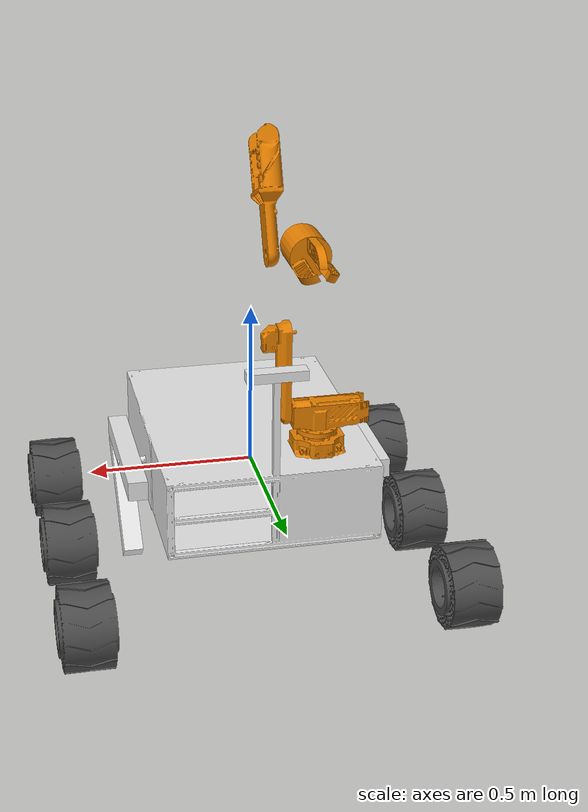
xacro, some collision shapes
<?xml version="1.0"?>
<robot xmlns:xacro="http://www.ros.org/wiki/xacro" name="full_rover">
    <!-- INCLUDE THE ARM URDF -->
    <xacro:include filename="$(find rover_arm_description)/urdf/rover_arm.urdf.xacro" />
    <xacro:include filename="$(find rover_body_description)/urdf/rover_body.urdf.xacro" />

    <xacro:property name="body_pos" value="0 0 0" />
    <xacro:property name="arm_pos" value="-0.16 0.2 0.15" />

    <link name="base_link"/>

    <xacro:rover_body parent="base_link" prefix="body_">
        <origin xyz="${body_pos}" rpy="0 0 0"/>
    </xacro:rover_body>

    <xacro:rover_arm parent="body_frame" prefix="arm_">
        <origin xyz="${arm_pos}" rpy="0 0 0"/>
    </xacro:rover_arm>

</robot>

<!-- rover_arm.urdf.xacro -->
<robot xmlns:xacro="http://www.ros.org/wiki/xacro" name="rover_arm">

  <xacro:macro name="rover_arm" params="parent prefix *origin">

  <!-- LINK OFFSETS -->
  <xacro:property name="base_rotation_offset" value="${pi / 2} 0 0" />
  <xacro:property name="j1_rotation_offset" value="${pi / 2} 0 0" />
  <xacro:property name="j2_rotation_offset" value="${pi / 6} 0 0" />
  <xacro:property name="j3_rotation_offset" value="${pi - 0.4366117} 0 0" />

  <!-- JOINT POSITIONS -->
  <xacro:property name="j1_joint_pos" value="0 0 0.024" />
  <xacro:property name="j2_joint_pos" value="0.0808 0 0.071" />
  <xacro:property name="j3_joint_pos" value="0.007 0 0.25" />
  <xacro:property name="ee_base_joint_pos" value="-0.028 0 0.2715" />
  <xacro:property name="slider_joint_pos" value="0 0.11 0" />
  <xacro:property name="finger1_joint_pos" value="-0.052384 0.134522 -0.016965" />
  <xacro:property name="finger1_joint_rotation" value="0 ${-pi / 6} 0" />
  <xacro:property name="finger2_joint_pos" value="0.011500 0.134522 0.053848" />
  <xacro:property name="finger2_joint_rotation" value="0 ${pi / 2} 0" />
  <xacro:property name="finger3_joint_pos" value="0.040884 0.134522 -0.036883" />
  <xacro:property name="finger3_joint_rotation" value="0 ${pi * 7 / 6} 0" />

  <!-- COLORS -->
  <!-- links color -->
  <material name="${prefix}links_color">
    <color rgba="0.9 0.5 0.0 1.0"/>
  </material>

  <!-- SLIDER TO FINGER CINEMATIC RELATION -->
  <xacro:property name="slider_length" value="0.05" />
  <xacro:property name="finger_rotation_upper_bound" value="${pi / 2}" />
  <!-- the formula used to calculate the multiplier is given by the total rotation distance divided by the total sliding distance -->
  <xacro:property name="relation_multip" value="${finger_rotation_upper_bound / slider_length}" />

  <!-- BASE LINK -->
  <link name="${prefix}base">
    <visual>
      <origin xyz="0 0 0" rpy="${base_rotation_offset}"/>
      <geometry>
        <mesh filename="package://rover_arm_description/meshes/visual/base.stl" scale="0.001 0.001 0.001"/>
      </geometry>
      <material name="${prefix}links_color"/>
    </visual>
    <collision>
      <origin xyz="0 0.015 -0.022" rpy="0 0 0"/>
      <geometry>
        <box size="0.153000 0.202000 0.122040"/>
      </geometry>
    </collision>
  </link>

  <link name="${prefix}j1">
    <visual>
      <origin xyz="0 0 0" rpy="${j1_rotation_offset}"/>
      <geometry>
        <mesh filename="package://rover_arm_description/meshes/visual/j1.stl" scale="0.001 0.001 0.001"/>
      </geometry>
      <material name="${prefix}links_color"/>
    </visual>
    <collision>
      <origin xyz="-0.035 0 0.065" rpy="0 0 0"/>
      <geometry>
        <box size="0.23 0.07 0.08"/>
      </geometry>
    </collision>
  </link>

  <link name="${prefix}j2">
    <visual>
      <origin xyz="0 0 0" rpy="${j2_rotation_offset}"/>
      <geometry>
        <mesh filename="package://rover_arm_description/meshes/visual/j2.stl" scale="0.001 0.001 0.001"/>
      </geometry>
      <material name="${prefix}links_color"/>
    </visual>
    <collision>
      <origin xyz="${0.05 / 2} 0 ${0.25 / 2}" rpy="0 0 0"/>
      <geometry>
        <box size="0.05 0.05 0.32"/>
      </geometry>
    </collision>
    <collision>
      <origin xyz="${0.05 + 0.05 / 2} 0 0.185" rpy="0 0 0"/>
      <geometry>
        <box size="0.05 0.05 0.17"/>
      </geometry>
    </collision>
  </link>

  <link name="${prefix}j3">
    <visual>
      <origin xyz="0 0 0" rpy="${j3_rotation_offset}"/>
      <geometry>
        <mesh filename="package://rover_arm_description/meshes/visual/j3.stl" scale="0.001 0.001 0.001"/>
      </geometry>
      <material name="${prefix}links_color"/>
    </visual>
    <collision>
      <origin xyz="${-0.05 / 2} 0 0.04" rpy="0 0 0"/>
      <geometry>
        <box size="0.05 0.07 0.15"/>
      </geometry>
    </collision>
    <collision>
      <origin xyz="${-0.05 / 2} 0 0.2" rpy="0 0 0"/>
      <geometry>
        <box size="0.13 0.07 0.2"/>
      </geometry>
    </collision>
    <collision>
      <origin xyz="${-(0.05 + 0.13 + 0.04) / 2} 0 0.195" rpy="0 0 0"/>
      <geometry>
        <box size="0.04 0.07 0.13"/>
      </geometry>
    </collision>
  </link>

  <!-- END EFFECTOR BASE -->
  <link name="${prefix}ee_base">
    <visual>
      <origin xyz="0 0.018007 0" rpy="0 0 0"/>
      <geometry>
        <mesh filename="package://rover_arm_description/meshes/visual/end_effector_base.stl" scale="0.001 0.001 0.001"/>
      </geometry>
      <material name="${prefix}links_color"/>
    </visual>
    <collision>
      <origin xyz="0 0.07 0" rpy="${pi / 2} 0 0"/>
      <geometry>
        <cylinder radius="0.06" length="0.12"/>
      </geometry>
    </collision>
  </link>

  <!-- END EFFECTOR SLIDER -->
  <link name="${prefix}ee_slider">
    <visual>
      <origin xyz="0 0 0" rpy="0 0 0"/>
      <geometry>
        <mesh filename="package://rover_arm_description/meshes/visual/end_effector_slider.stl" scale="0.001 0.001 0.001"/>
      </geometry>
      <material name="${prefix}links_color"/>
    </visual>
  </link>

  <!-- END EFFECTOR FINGERS -->
  <!-- finger 1 -->
  <link name="${prefix}ee_finger1">
    <visual>
      <origin xyz="0 0 0" rpy="0 0 0"/>
      <geometry>
        <mesh filename="package://rover_arm_description/meshes/visual/end_effector_finger.stl" scale="0.001 0.001 0.001"/>
      </geometry>
      <material name="${prefix}links_color"/>
    </visual>
    <collision>
      <origin xyz="0.016 ${0.14 / 2} ${- 0.022 / 2}" rpy="0 0 0"/>
      <geometry>
        <box size="0.042 0.14 0.022"/>
      </geometry>
    </collision>
  </link>

  <!-- finger 2 -->
  <link name="${prefix}ee_finger2">
    <visual>
      <origin xyz="0 0 0" rpy="0 0 0"/>
      <geometry>
        <mesh filename="package://rover_arm_description/meshes/visual/end_effector_finger.stl" scale="0.001 0.001 0.001"/>
      </geometry>
      <material name="${prefix}links_color"/>
    </visual>
    <collision>
      <origin xyz="0.016 ${0.14 / 2} ${- 0.022 / 2}" rpy="0 0 0"/>
      <geometry>
        <box size="0.042 0.14 0.022"/>
      </geometry>
    </collision>
  </link>

  <!-- finger 3 -->
  <link name="${prefix}ee_finger3">
    <visual>
      <origin xyz="0 0 0" rpy="0 0 0"/>
      <geometry>
        <mesh filename="package://rover_arm_description/meshes/visual/end_effector_finger.stl" scale="0.001 0.001 0.001"/>
      </geometry>
      <material name="${prefix}links_color"/>
    </visual>
    <collision>
      <origin xyz="0.016 ${0.14 / 2} ${- 0.022 / 2}" rpy="0 0 0"/>
      <geometry>
        <box size="0.042 0.14 0.022"/>
      </geometry>
    </collision>
  </link>

  <joint name="${prefix}mount_joint" type="fixed">
    <parent link="${parent}"/>
    <child link="${prefix}base"/>
    <xacro:insert_block name="origin"/>
  </joint>

  <!-- CONNECT J1 TO THE BASE -->
  <joint name="${prefix}j1_joint" type="continuous">
    <parent link="${prefix}base"/>
    <child link="${prefix}j1"/>
    <origin xyz="${j1_joint_pos}" rpy="0 0 0"/>
    <!-- Rotation Axis -->
    <axis xyz="0 0 1"/>
  </joint>

  <!-- CONNECT J2 TO J1 -->
  <joint name="${prefix}j2_joint" type="revolute">
    <parent link="${prefix}j1"/>
    <child link="${prefix}j2"/>
    <origin xyz="${j2_joint_pos}" rpy="0 0 0"/>
    <!-- Rotation Axis -->
    <axis xyz="1 0 0"/>
    <!-- Limits -->
    <limit lower="${-pi / 2}" upper="${pi / 2}" effort="50.0" velocity="1.0"/>
  </joint>

  <!-- CONNECT J3 TO J2 -->
  <joint name="${prefix}j3_joint" type="revolute">
    <parent link="${prefix}j2"/>
    <child link="${prefix}j3"/>
    <!-- Positioning and origin of j4 based from j3 -->
    <origin xyz="${j3_joint_pos}" rpy="0 0 0"/>
    <!-- Rotation Axis -->
    <axis xyz="1 0 0"/>
    <!-- Limits -->
    <limit lower="${-pi / 2}" upper="${pi / 2}" effort="50.0" velocity="1.0"/>
  </joint>

  <!-- CONNECT THE END EFFECTOR BASE TO J3 -->
  <link name="${prefix}ee_base_dummy"/> <!-- needed since urdf does not allow child with multiple parents, so this is a dummy-parent -->
  <joint name="${prefix}ee_base_joint_x" type="revolute">
    <parent link="${prefix}j3"/>
    <child link="${prefix}ee_base_dummy"/>
    <origin xyz="${ee_base_joint_pos}" rpy="0 0 0"/>
    <!-- Rotation Axis -->
    <axis xyz="1 0 0"/>
    <!-- Limits -->
    <limit lower="${pi}" upper="0" effort="50.0" velocity="1.0"/>
  </joint>
  <joint name="${prefix}ee_base_joint_y" type="continuous">
    <parent link="${prefix}ee_base_dummy"/>
    <child link="${prefix}ee_base"/>
    <origin xyz="0 0 0" rpy="0 0 0"/>
    <!-- Rotation Axis -->
    <axis xyz="0 1 0"/>
  </joint>

  <!-- CONNECT THE SLIDER TO THE END EFFECTOR BASE -->
  <joint name="${prefix}slider_joint" type="prismatic">
    <parent link="${prefix}ee_base"/>
    <child link="${prefix}ee_slider"/>
    <origin xyz="${slider_joint_pos}" rpy="0 0 0"/>
    <!-- Sliding Axis -->
    <axis xyz="0 1 0"/>
    <!-- Limits -->
    <limit lower="0.0" upper="${slider_length}" effort="50.0" velocity="1.0"/>
  </joint>

  <!-- CONNECT THE FINGERS TO THE END EFFECTOR BASE -->
  <!-- finger 1 joint-->
  <joint name="${prefix}finger1_joint" type="revolute">
    <parent link="${prefix}ee_base"/>
    <child link="${prefix}ee_finger1"/>
    <origin xyz="${finger1_joint_pos}" rpy="${finger1_joint_rotation}"/>
    <!-- Sliding Axis -->
    <axis xyz="0 0 1"/>
    <!-- Limits -->
    <limit lower="0.0" upper="${finger_rotation_upper_bound}" effort="50.0" velocity="1.0"/>
    <mimic joint="${prefix}slider_joint" multiplier="${relation_multip}" offset="0.0"/>
  </joint>

  <!-- finger 2 joint-->
  <joint name="${prefix}finger2_joint" type="revolute">
    <parent link="${prefix}ee_base"/>
    <child link="${prefix}ee_finger2"/>
    <origin xyz="${finger2_joint_pos}" rpy="${finger2_joint_rotation}"/>
    <!-- Sliding Axis -->
    <axis xyz="0 0 1"/>
    <!-- Limits -->
    <limit lower="0.0" upper="${finger_rotation_upper_bound}" effort="50.0" velocity="1.0"/>
    <mimic joint="${prefix}slider_joint" multiplier="${relation_multip}" offset="0.0"/>
  </joint>

  <!-- finger 3 joint-->
  <joint name="${prefix}finger3_joint" type="revolute">
    <parent link="${prefix}ee_base"/>
    <child link="${prefix}ee_finger3"/>
    <origin xyz="${finger3_joint_pos}" rpy="${finger3_joint_rotation}"/>
    <!-- Sliding Axis -->
    <axis xyz="0 0 1"/>
    <!-- Limits -->
    <limit lower="0.0" upper="${finger_rotation_upper_bound}" effort="50.0" velocity="1.0"/>
    <mimic joint="${prefix}slider_joint" multiplier="${relation_multip}" offset="0.0"/>
  </joint>

  </xacro:macro>

</robot>

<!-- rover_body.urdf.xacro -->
<robot xmlns:xacro="http://www.ros.org/wiki/xacro">

  <xacro:include filename="wheel.urdf.xacro" />

  <xacro:macro name="rover_body" params="prefix parent *origin">

  <!-- LINK OFFSETS -->
  <xacro:property name="frame_rotation_offset" value="${pi / 2} 0 0" />
  <xacro:property name="left_suspension_rotation_offset" value="${pi / 2} 0 0" />
  <xacro:property name="left_sub_suspension_rotation_offset" value="${pi / 2} 0 0" />
  <xacro:property name="right_suspension_rotation_offset" value="${pi / 2} 0 0" />
  <xacro:property name="right_sub_suspension_rotation_offset" value="${pi / 2} 0 0" />

  <!-- JOINT POSITIONS -->
  <xacro:property name="frame_joint_pos" value="0 0 0" />
  <xacro:property name="left_suspension_joint_pos" value="-0.3516 -0.053959 0" />
  <xacro:property name="left_sub_suspension_joint_pos" value="0.028 -0.249772 -0.051126" />
  <xacro:property name="right_suspension_joint_pos" value="0.3516 -0.053959 0" />
  <xacro:property name="right_sub_suspension_joint_pos" value="-0.028 -0.249772 -0.051126" />

  <!-- Camera dimentions and positions -->
  <xacro:property name="pole_height" value="0.312"/>
  <xacro:property name="pole_width" value="0.02"/>
  <xacro:property name="camera_len" value="0.178"/>
  <xacro:property name="camera_width" value="0.045"/>
  <xacro:property name="camera_height" value="0.03"/>

  <!-- COLORS -->
  <!-- links color -->
  <material name="${prefix}links_color">
    <color rgba="0.9 0.9 0.9 1.0"/>
  </material>

  <link name="${prefix}frame">
    <visual>
      <origin xyz="0 0 0" rpy="${frame_rotation_offset}"/>
      <geometry>
        <mesh filename="package://rover_body_description/meshes/visual/frame.stl" scale="0.001 0.001 0.001"/>
      </geometry>
      <material name="${prefix}links_color"/>
    </visual>
    <collision>
      <origin xyz="0 -0.053959 0" rpy="0 0 0"/>
      <geometry>
        <box size="0.64 0.84 0.24"/>
      </geometry>
    </collision>
  </link>

  <link name="${prefix}left_suspension">
    <visual>
      <origin xyz="0 0 0" rpy="${left_suspension_rotation_offset}"/>
      <geometry>
        <mesh filename="package://rover_body_description/meshes/visual/left_suspension.stl" scale="0.001 0.001 0.001"/>
      </geometry>
      <material name="${prefix}links_color"/>
    </visual>
    <collision>
      <origin xyz="-0.024 -0.032 0" rpy="0 0 0"/>
      <geometry>
        <box size="0.06 0.48 0.06"/>
      </geometry>
    </collision>
    <collision>
      <origin xyz="-0.024 ${-0.032+0.38} -0.15" rpy="${- pi / 4} 0 0"/>
      <geometry>
        <box size="0.06 0.45 0.06"/>
      </geometry>
    </collision>
    <collision>
      <origin xyz="-0.094 ${-0.032 + 0.38 + 0.12} ${-0.15-0.12}" rpy="${- pi / 4} 0 0"/>
      <geometry>
        <box size="0.14 0.11 0.11"/>
      </geometry>
    </collision>
  </link>

  <link name="${prefix}left_sub_suspension">
    <visual>
      <origin xyz="0 0 0" rpy="${left_sub_suspension_rotation_offset}"/>
      <geometry>
        <mesh filename="package://rover_body_description/meshes/visual/left_sub_suspension.stl" scale="0.001 0.001 0.001"/>
      </geometry>
      <material name="${prefix}links_color"/>
    </visual>
    <collision>
      <origin xyz="-0.05 0.125 -0.125" rpy="${- pi / 4} 0 0"/>
      <geometry>
        <box size="0.06 0.4 0.06"/>
      </geometry>
    </collision>
    <collision>
      <origin xyz="-0.05 -0.125 -0.125" rpy="${pi / 4} 0 0"/>
      <geometry>
        <box size="0.06 0.4 0.06"/>
      </geometry>
    </collision>
    <collision>
      <origin xyz="-0.11 ${0.125 + 0.1} ${- 0.125 - 0.1}" rpy="${- pi / 4} 0 0"/>
      <geometry>
        <box size="0.14 0.11 0.11"/>
      </geometry>
    </collision>
    <collision>
      <origin xyz="-0.11 ${- 0.125 - 0.1} ${- 0.125 - 0.1}" rpy="${- pi / 4} 0 0"/>
      <geometry>
        <box size="0.14 0.11 0.11"/>
      </geometry>
    </collision>
  </link>

  <link name="${prefix}right_suspension">
    <visual>
      <origin xyz="0 0 0" rpy="${right_suspension_rotation_offset}"/>
      <geometry>
        <mesh filename="package://rover_body_description/meshes/visual/right_suspension.stl" scale="0.001 0.001 0.001"/>
      </geometry>
      <material name="${prefix}links_color"/>
    </visual>
    <collision>
      <origin xyz="0.024 -0.032 0" rpy="0 0 0"/>
      <geometry>
        <box size="0.06 0.48 0.06"/>
      </geometry>
    </collision>
    <collision>
      <origin xyz="0.024 ${-0.032+0.38} -0.15" rpy="${- pi / 4} 0 0"/>
      <geometry>
        <box size="0.06 0.45 0.06"/>
      </geometry>
    </collision>
    <collision>
      <origin xyz="0.094 ${-0.032 + 0.38 + 0.12} ${-0.15-0.12}" rpy="${- pi / 4} 0 0"/>
      <geometry>
        <box size="0.14 0.11 0.11"/>
      </geometry>
    </collision>
  </link>

  <link name="${prefix}right_sub_suspension">
    <visual>
      <origin xyz="0 0 0" rpy="${right_sub_suspension_rotation_offset}"/>
      <geometry>
        <mesh filename="package://rover_body_description/meshes/visual/right_sub_suspension.stl" scale="0.001 0.001 0.001"/>
      </geometry>
      <material name="${prefix}links_color"/>
    </visual>
    <collision>
      <origin xyz="0.05 0.125 -0.125" rpy="${- pi / 4} 0 0"/>
      <geometry>
        <box size="0.06 0.4 0.06"/>
      </geometry>
    </collision>
    <collision>
      <origin xyz="0.05 -0.125 -0.125" rpy="${pi / 4} 0 0"/>
      <geometry>
        <box size="0.06 0.4 0.06"/>
      </geometry>
    </collision>
    <collision>
      <origin xyz="0.11 ${0.125 + 0.1} ${- 0.125 - 0.1}" rpy="${- pi / 4} 0 0"/>
      <geometry>
        <box size="0.14 0.11 0.11"/>
      </geometry>
    </collision>
    <collision>
      <origin xyz="0.11 ${- 0.125 - 0.1} ${- 0.125 - 0.1}" rpy="${- pi / 4} 0 0"/>
      <geometry>
        <box size="0.14 0.11 0.11"/>
      </geometry>
    </collision>
  </link>

  <link name="camera_pole">
      <visual>
          <origin xyz="0 0 0" rpy="0 0 0"/>
          <geometry>
          <box size="${pole_width} ${pole_width} ${pole_height}"/>
          </geometry>
          <material name="${prefix}links_color"/>
      </visual>
  </link>

  <link name="camera">
      <visual>
          <origin xyz="0 0 0" rpy="0 0 0"/>
          <geometry>
          <box size="${camera_len} ${camera_width} ${camera_height}"/>
          </geometry>
          <material name="${prefix}links_color"/>
      </visual>
  </link>

  <joint name="${prefix}mount_joint" type="fixed">
    <parent link="${parent}"/>
    <child link="${prefix}frame"/>
    <xacro:insert_block name="origin" />
  </joint>

  <joint name="${prefix}left_suspension_joint" type="revolute">
    <parent link="${prefix}frame"/>
    <child link="${prefix}left_suspension"/>
    <origin xyz="${left_suspension_joint_pos}" rpy="0 0 0"/>
    <axis xyz="1 0 0"/>
    <limit lower="${-pi / 2}" upper="${pi / 2}" effort="50.0" velocity="1.0"/>
  </joint>

  <joint name="${prefix}left_sub_suspension_joint" type="revolute">
    <parent link="${prefix}left_suspension"/>
    <child link="${prefix}left_sub_suspension"/>
    <origin xyz="${left_sub_suspension_joint_pos}" rpy="0 0 0"/>
    <axis xyz="1 0 0"/>
    <limit lower="${-pi / 2}" upper="${pi / 2}" effort="50.0" velocity="1.0"/>
  </joint>

  <joint name="${prefix}right_suspension_joint" type="revolute">
    <parent link="${prefix}frame"/>
    <child link="${prefix}right_suspension"/>
    <origin xyz="${right_suspension_joint_pos}" rpy="0 0 0"/>
    <axis xyz="1 0 0"/>
    <limit lower="${-pi / 2}" upper="${pi / 2}" effort="50.0" velocity="1.0"/>
  </joint>

  <joint name="${prefix}right_sub_suspension_joint" type="revolute">
    <parent link="${prefix}right_suspension"/>
    <child link="${prefix}right_sub_suspension"/>
    <origin xyz="${right_sub_suspension_joint_pos}" rpy="0 0 0"/>
    <axis xyz="1 0 0"/>
    <limit lower="${-pi / 2}" upper="${pi / 2}" effort="50.0" velocity="1.0"/>
  </joint>

  <joint name="frame2camera_pole" type="fixed">
      <parent link="base_link"/>
      <child link="camera_pole"/>
      <origin xyz="0 0.36 0.28" rpy="0 0 0"/>
  </joint>

  <joint name="camera_pole2camera" type="fixed">
      <parent link="camera_pole"/>
      <child link="camera"/>
      <origin xyz="0 0 ${pole_height / 2}" rpy="0 0 0"/>
  </joint>

  <!-- Left Wheels - mirror=0 -->
  <xacro:wheel prefix="${prefix}front_left" parent="${prefix}left_suspension" x_pos="-0.137" y_pos="0.480039" z_pos="-0.276626" mirror="0" />
  <xacro:wheel prefix="${prefix}mid_left"   parent="${prefix}left_sub_suspension" x_pos="-0.1645"  y_pos="0.211339" z_pos="-0.244995" mirror="0" />
  <xacro:wheel prefix="${prefix}rear_left"  parent="${prefix}left_sub_suspension" x_pos="-0.1645" y_pos="-0.244995" z_pos="-0.211339" mirror="0" />

  <!-- Right Wheels - mirror=1 -->
  <xacro:wheel prefix="${prefix}front_right" parent="${prefix}right_suspension" x_pos="0.137" y_pos="0.480039" z_pos="-0.276626" mirror="1" />
  <xacro:wheel prefix="${prefix}mid_right"   parent="${prefix}right_sub_suspension" x_pos="0.1645"  y_pos="0.229" z_pos="-0.2285" mirror="1" />
  <xacro:wheel prefix="${prefix}rear_right"  parent="${prefix}right_sub_suspension" x_pos="0.1645" y_pos="-0.229" z_pos="-0.225" mirror="1" />

  </xacro:macro>
</robot>

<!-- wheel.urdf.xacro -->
<robot xmlns:xacro="http://www.ros.org/wiki/xacro">

  <!-- x_pos, y_pos, z_pos: wheel joint position in relation to the parent link -->
  <!-- mirror: has a value of 0 for the left side, and 1 for the right side -->
  <xacro:macro name="wheel" params="prefix parent x_pos y_pos z_pos mirror">

    <joint name="${prefix}_wheel_joint" type="continuous">
      <parent link="${parent}"/>
      <child link="${prefix}_wheel_link"/>
      <origin xyz="${x_pos} ${y_pos} ${z_pos}" rpy="0 0 0"/>
      <axis xyz="1 0 0"/>
    </joint>

    <link name="${prefix}_wheel_link">
      <visual>
        <origin xyz="0 0 0" rpy="${pi / 2} 0 ${mirror * pi}"/>
        <geometry>
          <mesh filename="package://rover_body_description/meshes/visual/wheel.stl" scale="0.001 0.001 0.001"/>
        </geometry>
        <material name="black">
          <color rgba="0.3 0.3 0.3 1.0"/>
        </material>
      </visual>

      <collision>
        <origin xyz="${(mirror * 0.17) - 0.17 / 2} 0 0" rpy="${pi / 2} 0 ${pi / 2}"/>
        <geometry>
          <cylinder radius="0.125" length="0.17"/>
        </geometry>
      </collision>
    </link>

  </xacro:macro>
</robot>
